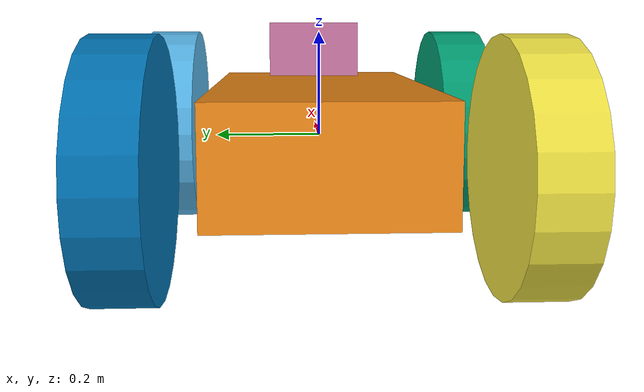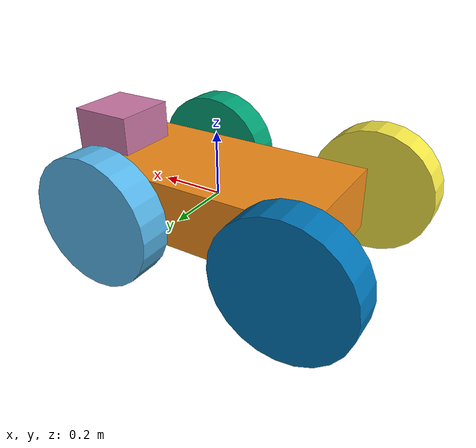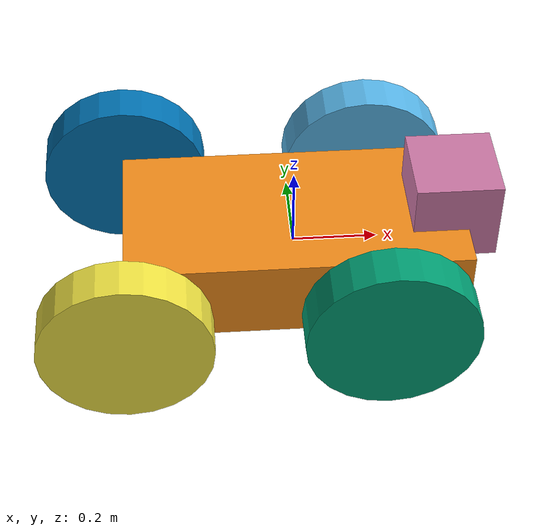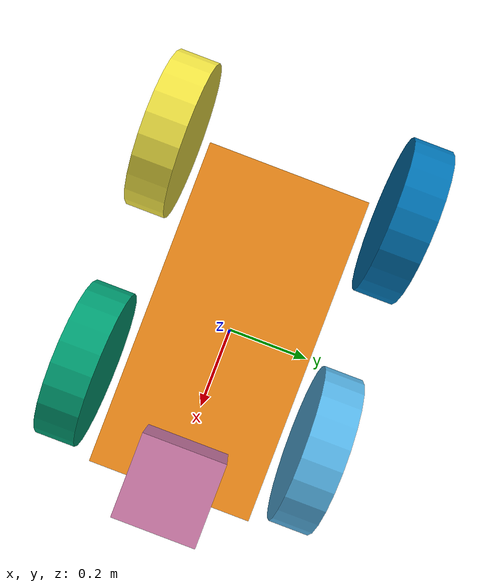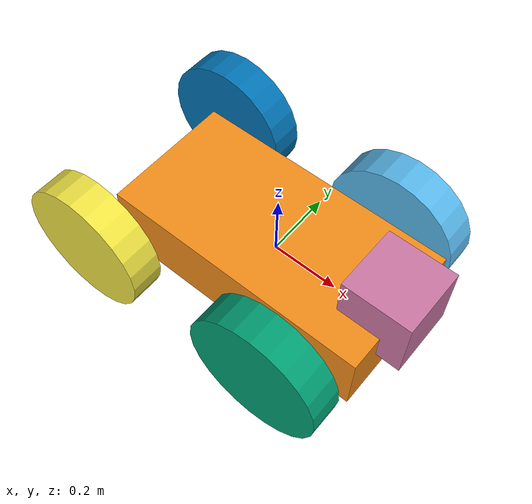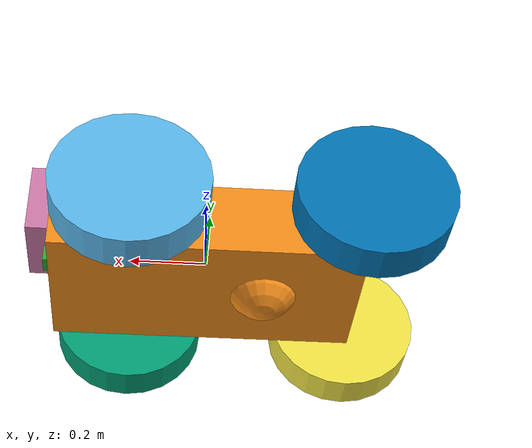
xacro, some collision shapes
<?xml version='1.0'?>

<robot name="myrobot" xmlns:xacro="http://www.ros.org/wiki/xacro">

<!-- Globale Variablen um die Kameragröße und -masse zu verändern -->
  <xacro:property name="cameraSize" value="0.05"/>
  <xacro:property name="cameraMass" value="0.1"/>

<!-- Hier werden die mybot.gazebo, materials und macros files implementiert-->
  <xacro:include filename="$(find mybot_description)/urdf/mybot.gazebo" />
  <xacro:include filename="$(find mybot_description)/urdf/materials.xacro" />
  <xacro:include filename="$(find mybot_description)/urdf/macros.xacro" />

 <!-- TEST -->
  <link name='chassis'>
    <pose>0 0 0.9 0 0 0</pose>

    <inertial>
      <mass value="10.0"/>
      <origin xyz="0.0 0 0.1" rpy=" 0 0 0"/>
      <inertia
          ixx="0.5" ixy="0" ixz="0"
          iyy="1.0" iyz="0"
          izz="0.1"
      />
    </inertial>
<!-- Collision gibt den Rahmen des Objekts Chassis an, den es bei einer Kollision beachten soll -->
    <collision name='collision'>
      <geometry>
        <box size=".8 .4 .2"/>
      </geometry>
    </collision>

<!-- visual ist die Größe des Chassis, das tatsächlich angezeigt wird in der Simulation-->
    <visual name='chassis_visual'>
      <origin xyz="0 0 0" rpy=" 0 0 0"/>
      <geometry>
        <box size=".8 .4 .2"/>
      </geometry>
    </visual>

<!-- Caster ist das Runde dritte Rad am Chassis, dass ursprüngliche dafür verwendet wurde, damit das Fahrzeug nicht umfällt.-->
    <collision name='caster_collision'>
      <origin xyz="-0.15 0 -0.05" rpy=" 0 0 0"/>
      <geometry>
        <sphere radius="0.1"/>
      </geometry>
      <surface>
        <friction>
          <ode>
            <mu>0</mu>
            <mu2>0</mu2>
            <slip1>1.0</slip1>
            <slip2>1.0</slip2>
          </ode>
        </friction>
      </surface>
    </collision>

    <visual name='caster_visual'>
      <origin xyz="-0.15 0 -0.05" rpy=" 0 0 0"/>
      <geometry>
        <sphere radius="0.1"/>
      </geometry>
    </visual>
  </link>

<!-- Der Link Name für das linke Rad. -->
  <link name="left_wheel">
    <!--origin xyz="0.1 0.13 0.1" rpy="0 1.5707 1.5707"/-->
    <collision name="collision">
      <origin xyz="0 0 0" rpy="0 1.5707 1.5707"/>
      <geometry>
        <cylinder radius="0.2" length="0.1"/>
      </geometry>
    </collision>
    <visual name="left_wheel_visual">
      <origin xyz="0 0 0" rpy="0 1.5707 1.5707"/>
      <geometry>
        <cylinder radius="0.2" length="0.1"/>
      </geometry>
    </visual>
    <inertial>
      <origin xyz="0 0 0" rpy="0 1.5707 1.5707"/>
      <mass value="5"/>
      <cylinder_inertia m="5" r="0.1" h="0.1"/>
      <inertia
        ixx="1.0" ixy="0.0" ixz="0.0"
        iyy="1.0" iyz="0.0"
        izz="1.0"/>
    </inertial>
  </link>

  <link name="right_wheel">
    <!--origin xyz="0.1 -0.13 0.1" rpy="0 1.5707 1.5707"/-->
    <collision name="collision">
      <origin xyz="0 0 0" rpy="0 1.5707 1.5707"/>
      <geometry>
        <cylinder radius="0.2" length="0.1"/>
      </geometry>
    </collision>
    <visual name="right_backwheel_visual">
      <origin xyz="0 0 0" rpy="0 1.5707 1.5707"/>
      <geometry>
        <cylinder radius="0.2" length="0.1"/>
      </geometry>
    </visual>
    <inertial>
      <origin xyz="0 0 0" rpy="0 1.5707 1.5707"/>
      <mass value="5"/>
      <cylinder_inertia m="5" r="0.1" h="0.1"/>
      <inertia
        ixx="1.0" ixy="0.0" ixz="0.0"
        iyy="1.0" iyz="0.0"
        izz="1.0"/>
    </inertial>
  </link>

<link name="right_backwheel">
    <!--origin xyz="0.1 -0.13 0.1" rpy="0 1.5707 1.5707"/-->
    <collision name="collision">
      <origin xyz="0 0 0" rpy="0 1.5707 1.5707"/>
      <geometry>
        <cylinder radius="0.2" length="0.1"/>
      </geometry>
    </collision>
    <visual name="right_backwheel_visual">
      <origin xyz="0 0 0" rpy="0 1.5707 1.5707"/>
      <geometry>
        <cylinder radius="0.2" length="0.1"/>
      </geometry>
    </visual>
    <inertial>
      <origin xyz="0 0 0" rpy="0 1.5707 1.5707"/>
      <mass value="5"/>
      <cylinder_inertia m="5" r="0.1" h="0.1"/>
      <inertia
        ixx="1.0" ixy="0.0" ixz="0.0"
        iyy="1.0" iyz="0.0"
        izz="1.0"/>
    </inertial>
  </link>

<link name="left_backwheel">
    <!--origin xyz="0.1 -0.13 0.1" rpy="0 1.5707 1.5707"/-->
    <collision name="collision">
      <origin xyz="0 0 0" rpy="0 1.5707 1.5707"/>
      <geometry>
        <cylinder radius="0.2" length="0.01"/>
      </geometry>
    </collision>
    <visual name="left_backwheel_visual">
      <origin xyz="0 0 0" rpy="0 1.5707 1.5707"/>
      <geometry>
        <cylinder radius="0.2" length="0.1"/>
      </geometry>
    </visual>
    <inertial>
      <origin xyz="0 0 0" rpy="0 1.5707 1.5707"/>
      <mass value="5"/>
      <cylinder_inertia m="5" r="0.1" h="0.1"/>
      <inertia
        ixx="1.0" ixy="0.0" ixz="0.0"
        iyy="1.0" iyz="0.0"
        izz="1.0"/>
    </inertial>
  </link>

<!-- Mit den Joint Type sind die Räder und das Chassis verbunden. Es ist vom Typ Continous, damit es sich drehen kann -->
<joint type="continuous" name="right_backwheel_hinge">
    <origin xyz="-0.4 -0.3 0" rpy="0 0 0"/>
    <child link="right_backwheel"/>
    <parent link="chassis"/>
    <axis xyz="0 1 0" rpy="0 0 0"/>
    <limit effort="100" velocity="100"/>
    <joint_properties damping="0.0" friction="0.0"/>
  </joint>

<!-- Mit den Joint Type sind die Räder und das Chassis verbunden. Es ist vom Typ Continous, damit es sich drehen kann -->
 <joint type="continuous" name="left_backwheel_hinge">
    <origin xyz="-0.4 0.3 0" rpy="0 0 0"/>
    <child link="left_backwheel"/>
    <parent link="chassis"/>
    <axis xyz="0 1 0" rpy="0 0 0"/>
    <limit effort="100" velocity="100"/>
    <joint_properties damping="0.0" friction="0.0"/>
  </joint>

<!-- Mit den Joint Type sind die Räder und das Chassis verbunden. Es ist vom Typ Continous, damit es sich drehen kann -->
  <joint type="continuous" name="left_wheel_hinge">
    <origin xyz="0.2 0.3 0" rpy="0 0 0"/>
    <child link="left_wheel"/>
    <parent link="chassis"/>
    <axis xyz="0 1 0" rpy="0 0 0"/>
    <limit effort="100" velocity="100"/>
    <joint_properties damping="0.0" friction="0.0"/>
  </joint>

<!-- Mit den Joint Type sind die Räder und das Chassis verbunden. Es ist vom Typ Continous, damit es sich drehen kann -->
  <joint type="continuous" name="right_wheel_hinge">
    <origin xyz="0.2 -0.3 0" rpy="0 0 0"/>
    <child link="right_wheel"/>
    <parent link="chassis"/>
    <axis xyz="0 1 0" rpy="0 0 0"/>
    <limit effort="100" velocity="100"/>
    <joint_properties damping="0.0" friction="0.0"/>
  </joint>

<!-- Mit den Link Type werden die Dimensionen der Kamera festgelegt. In box size wurden oben festgelegte globale Variablen verwendet -->
<link name="camera">
    <collision>
      <origin xyz="0 0 0" rpy="0 0 0"/>
      <geometry>
        <box size="${cameraSize} ${cameraSize} ${cameraSize}"/>
      </geometry>
    </collision>

    <visual>
      <origin xyz="0 0 0" rpy="0 0 0"/>
      <geometry>
        <box size="${cameraSize} ${cameraSize} ${cameraSize}"/>
      </geometry>
      <material name="green"/>
    </visual>

    <inertial>
      <mass value="${cameraMass}" />
      <origin xyz="0 0 0" rpy="0 0 0"/>
      <box_inertia m="${cameraMass}" x="${cameraSize}" y="${cameraSize}" z="${cameraSize}" />
      <inertia ixx="1e-6" ixy="0" ixz="0" iyy="1e-6" iyz="0" izz="1e-6" />
    </inertial>
  </link>

  <!-- Joint gibt an, an welchem Punkt der Kameralink mit dem Chassis verbunden ist. -->
  <joint name="camera_joint" type="fixed">
    <axis xyz="0 1 0" />
    <origin xyz=".4 0 0" rpy="0 0 0"/>
    <parent link="chassis"/>
    <child link="camera"/>
</joint>

  <!-- Joint gibt an, an welchem Punkt der Hokyolink mit dem Chassis verbunden ist. -->
<joint name="hokuyo_joint" type="fixed">
    <axis xyz="0 1 0" />
    <origin xyz=".37 0 .12" rpy="0 0 0"/>
    <parent link="chassis"/>
    <child link="hokuyo"/>
  </joint>

  <!-- Hokuyo Laser Link legt die physischen Dimensionen für den Hokyolaser fest. Größe x = 0.2, y= 0.2, z=0.2-->
  <link name="hokuyo">
    <collision>
      <origin xyz="0 0 0" rpy="0 0 0"/>
      <geometry>
    <box size="0.2 0.2 0.2"/>
      </geometry>
    </collision>

    <visual>
      <origin xyz="0 0 0" rpy="0 0 0"/>
      <geometry>
        <mesh filename="package://mybot_description/meshes/hokuyo.dae"/>
      </geometry>
    </visual>

    <inertial>
      <mass value="1e-5" />
      <origin xyz="0 0 0" rpy="0 0 0"/>
      <inertia ixx="1e-6" ixy="0" ixz="0" iyy="1e-6" iyz="0" izz="1e-6" />
    </inertial>
</link>

</robot>
